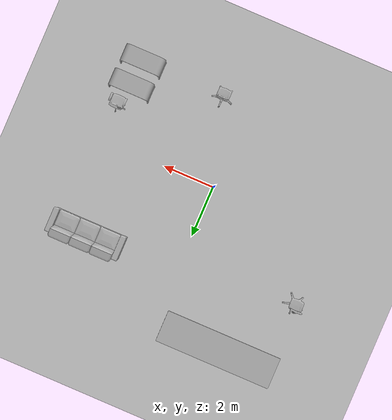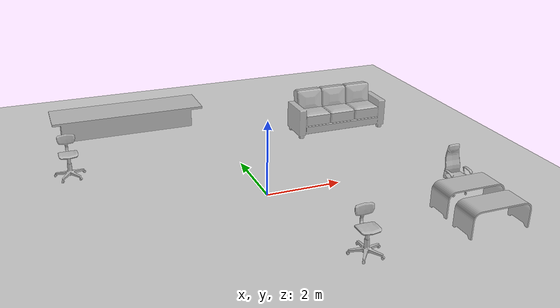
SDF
<sdf version="1.7">
 <world name="default">
  <light name="sun" type="directional">
   <pose>0 0 10 0 -0 0</pose>
   <diffuse>0.8 0.8 0.8 1</diffuse>
   <specular>0.2 0.2 0.2 1</specular>
   <attenuation>
    <range>1000</range>
    <constant>0.9</constant>
    <linear>0.01</linear>
    <quadratic>0.001</quadratic>
   </attenuation>
   <direction>-0.5 0.1 -0.9</direction>
   <spot><inner_angle>0</inner_angle><outer_angle>0</outer_angle><falloff>0</falloff></spot>
  </light>
  <model name="ground_plane">
   <static>1</static>
   <link name="link">
    <collision name="collision">
     <geometry><plane><normal>0 0 1</normal><size>100 100</size></plane></geometry>
     <surface>
      <contact><collide_bitmask>65535</collide_bitmask></contact>
      <friction><ode><mu>100</mu><mu2>50</mu2></ode></friction>
     </surface>
    </collision>
    <visual name="visual">
     <cast_shadows>0</cast_shadows>
     <geometry><plane><normal>0 0 1</normal><size>100 100</size></plane></geometry>
     <material>
      <script><uri>file://media/materials/scripts/gazebo.material</uri><name>Gazebo/Grey</name></script>
     </material>
    </visual>
   </link>
  </model>
  <gravity>0 0 -9.8</gravity>
  <magnetic_field>6e-06 2.3e-05 -4.2e-05</magnetic_field>
  <atmosphere type="adiabatic"/>
  <physics type="ode">
   <max_step_size>0.001</max_step_size>
   <real_time_factor>1</real_time_factor>
   <real_time_update_rate>1000</real_time_update_rate>
  </physics>
  <scene><ambient>0.4 0.4 0.4 1</ambient><background>0.7 0.7 0.7 1</background><shadows>1</shadows></scene>
  <audio><device>default</device></audio>
  <spherical_coordinates>
   <surface_model>EARTH_WGS84</surface_model>
   <latitude_deg>0</latitude_deg>
   <longitude_deg>0</longitude_deg>
   <elevation>0</elevation>
   <heading_deg>0</heading_deg>
  </spherical_coordinates>
  <model name="office_chair">
   <static>1</static>
   <link name="link">
    <collision name="collision">
     <pose>0.001581 0.000308 0.569888 0 -0 0</pose>
     <geometry><cylinder><radius>0.43</radius><length>1.14</length></cylinder></geometry>
    </collision>
    <visual name="visual">
     <geometry>
      <mesh><uri>model://office_chair/meshes/office_chair.dae</uri><scale>1.4 1.4 1.4</scale></mesh>
     </geometry>
    </visual>
   </link>
   <pose>-4.52812 2.81085 0 0 -0 0</pose>
  </model>
  <model name="office_chair_0">
   <static>1</static>
   <link name="link">
    <collision name="collision">
     <pose>0.001581 0.000308 0.569888 0 -0 0</pose>
     <geometry><cylinder><radius>0.43</radius><length>1.14</length></cylinder></geometry>
    </collision>
    <visual name="visual">
     <geometry>
      <mesh><uri>model://office_chair/meshes/office_chair.dae</uri><scale>1.4 1.4 1.4</scale></mesh>
     </geometry>
    </visual>
   </link>
   <pose>1.00491 -3.28336 0 0 -0 0</pose>
  </model>
  <model name="office_couch">
   <static>1</static>
   <link name="link">
    <collision name="collision">
     <pose>0.000893 0.384169 0.704321 0 -0 0</pose>
     <geometry><box><size>2.91435 0.976328 1.41768</size></box></geometry>
    </collision>
    <visual name="visual">
     <geometry>
      <mesh><uri>model://office_couch/meshes/office_couch.dae</uri><scale>1.4 1.4 1.4</scale></mesh>
     </geometry>
    </visual>
   </link>
   <pose>3.6365 3.08994 0 0 -0 0</pose>
  </model>
  <model name="desk">
   <static>1</static>
   <link name="link">
    <visual name="visual">
     <geometry><mesh><uri>model://desk/meshes/desk.obj</uri><scale>0.001 0.001 0.001</scale></mesh></geometry>
    </visual>
   </link>
   <pose>4.26124 -3.26904 0 0 -0 0</pose>
  </model>
  <model name="desk_0">
   <static>1</static>
   <link name="link">
    <visual name="visual">
     <geometry><mesh><uri>model://desk/meshes/desk.obj</uri><scale>0.001 0.001 0.001</scale></mesh></geometry>
    </visual>
   </link>
   <pose>4.30412 -2.27561 0 0 -0 0</pose>
  </model>
  <model name="desk_chair">
   <static>1</static>
   <link name="link">
    <collision name="collision">
     <pose>0.001581 0.000308 0.612847 0 -0 0</pose>
     <geometry><cylinder><radius>0.33</radius><length>1.23</length></cylinder></geometry>
    </collision>
    <visual name="visual">
     <geometry>
      <mesh><uri>model://desk_chair/meshes/desk_chair.obj</uri><scale>0.01 0.01 0.01</scale></mesh>
     </geometry>
    </visual>
   </link>
   <pose>4.52299 -1.48784 0 0 -0 0</pose>
  </model>
  <model name="conference_table_large">
   <static>1</static>
   <link name="link">
    <collision name="collision">
     <pose>-0.000328 -0.000776 0.367474 0 -0 0</pose>
     <geometry><box><size>4.52032 1.21763 0.742359</size></box></geometry>
    </collision>
    <visual name="visual">
     <geometry>
      <mesh>
       <uri>model://conference_table_large/meshes/conference_table_large.obj</uri>
       <scale>0.01 0.01 0.01</scale>
      </mesh>
     </geometry>
    </visual>
   </link>
   <pose>-2.51169 5.44191 0 0 -0 0</pose>
  </model>
  <plugin name="gazebo_ros_state" filename="libgazebo_ros_state.so">
   <ros><namespace>/gazebo</namespace></ros>
   <update_rate>1.0</update_rate>
  </plugin>
 </world>
</sdf>
